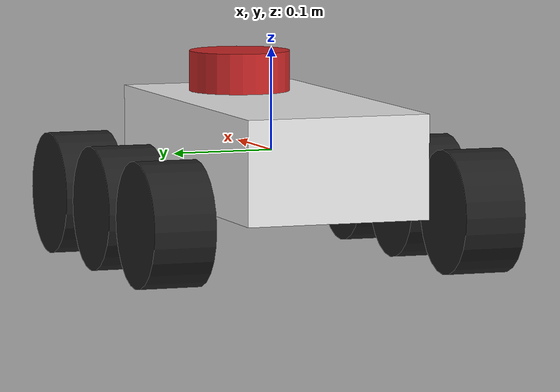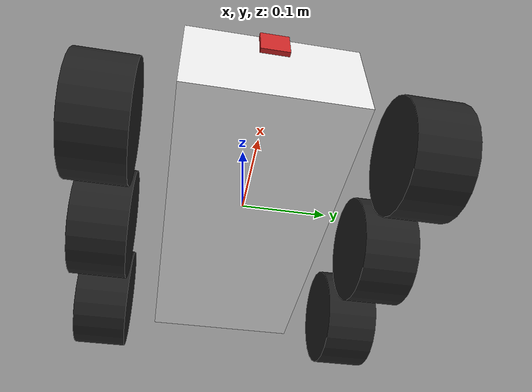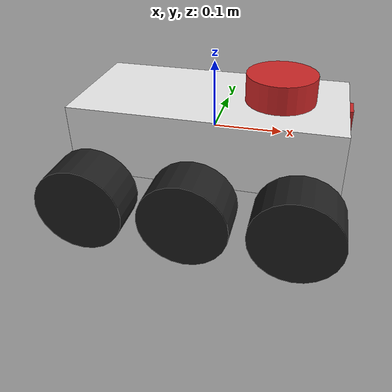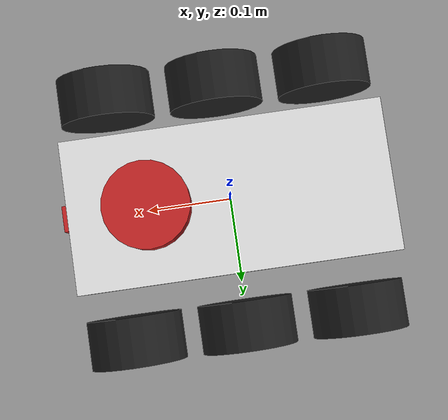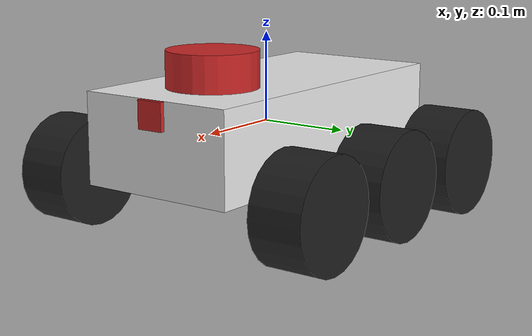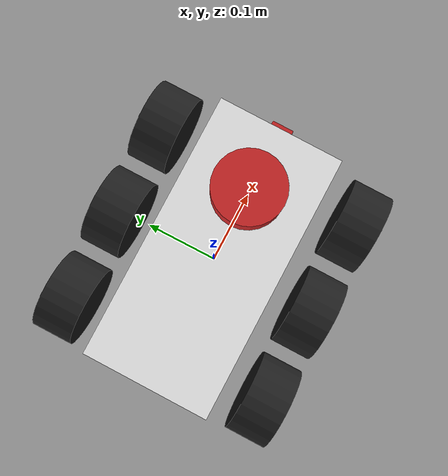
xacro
<?xml version="1.0"?>
<robot name="k3robot" xmlns:xacro="http://ros.org/wiki/xacro">

    <!-- Imports -->
    <xacro:include filename="colors.xacro"/>
    <xacro:include filename="robot_constants.xacro"/>
    <xacro:include filename="inertial_properties.xacro"/>
    <xacro:include filename="lidar.xacro"/>
    <xacro:include filename="gazebo_control.xacro"/>
    <xacro:include filename="camera.xacro"/>

    <!-- Robot Footprint -->
    <link name="base_footprint"/>

    <!-- Robot Base -->
    <link name="base_link">
        <visual>
            <geometry>
                <box size="${base_length} ${base_width} ${base_height}"/>
            </geometry>
            <material name="white"/>
        </visual>
        <collision>
            <geometry>
                <box size="${base_length} ${base_width} ${base_height}"/>
            </geometry>
        </collision>
        <xacro:box_inertia m="2.8" w="${base_width}" d="${base_length}" h="${base_height}"/>
    </link>

    <gazebo reference="base_link">
      <material>Gazebo/White</material>
    </gazebo>

    <joint name="base_joint" type="fixed">
        <parent link="base_link"/>
        <child link="base_footprint"/>
        <origin xyz="0.0 0.0 ${-(wheel_radius + wheel_zoff)}" rpy="0 0 0"/>
    </joint>

      <!-- Robot Wheels -->
  <xacro:macro name="wheel" params="prefix x_reflect y_reflect xoffset">
    <link name="${prefix}_link">
      <visual>
        <origin xyz="0 0 0" rpy="${pi/2} 0 0"/>
        <geometry>
            <cylinder radius="${wheel_radius}" length="${wheel_width}"/>
        </geometry>
        <material name="black"/>
      </visual>
      <collision>
        <origin xyz="0 0 0" rpy="${pi/2} 0 0"/>
            <geometry>
                <cylinder radius="${wheel_radius}" length="${wheel_width}"/>
            </geometry>
      </collision>

      <xacro:cylinder_inertia m="0.2" r="${wheel_radius}" h="${wheel_width}"/>

    </link>

    <gazebo reference="${prefix}_link">
      <material>Gazebo/Black</material>
    </gazebo>

    <joint name="${prefix}_joint" type="continuous">
      <parent link="base_link"/>
      <child link="${prefix}_link"/>
      <origin xyz="${x_reflect*wheel_xoff + xoffset} ${y_reflect*(base_width/2+wheel_ygap)} ${-wheel_zoff}" rpy="0 0 0"/>
      <axis xyz="0 1 0"/>
    </joint>
  </xacro:macro>

    <xacro:wheel prefix="drivewhl_lf" x_reflect="-1" y_reflect="1" xoffset="0.14"/>
    <xacro:wheel prefix="drivewhl_rf" x_reflect="-1" y_reflect="-1" xoffset="0.14"/>

    <xacro:wheel prefix="drivewhl_lm" x_reflect="-1" y_reflect="1" xoffset="0"/>
    <xacro:wheel prefix="drivewhl_rm" x_reflect="-1" y_reflect="-1" xoffset="0"/>

    <xacro:wheel prefix="drivewhl_lr" x_reflect="-1" y_reflect="1" xoffset="-0.14"/>
    <xacro:wheel prefix="drivewhl_rr" x_reflect="-1" y_reflect="-1" xoffset="-0.14"/>

</robot>

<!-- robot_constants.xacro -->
<robot xmlns:xacro="http://www.ros.org/wiki/xacro">

    <!-- Define Robot Contants -->
    <xacro:property name="base_width" value="0.18"/>
    <xacro:property name="base_length" value="0.38"/>
    <xacro:property name="base_height" value="0.10"/>

    <xacro:property name="wheel_radius" value="0.06"/>
    <xacro:property name="wheel_width" value="0.06"/>

    <xacro:property name="wheel_ygap" value="0.064"/>
    <xacro:property name="wheel_zoff" value="0.05"/>
    <xacro:property name="wheel_xoff" value="0.0"/>

</robot>

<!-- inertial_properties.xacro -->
<robot xmlns:xacro="http://www.ros.org/wiki/xacro">

<!-- Define intertial property macros  -->

    <!--Chassis Inertial Properties -->
  <xacro:macro name="box_inertia" params="m w h d">
    <inertial>
      <origin xyz="0 0 0" rpy="${pi/2} 0 ${pi/2}"/>
      <mass value="${m}"/>
      <inertia ixx="${(m/12) * (h*h + d*d)}" ixy="0.0" ixz="0.0" iyy="${(m/12) * (w*w + d*d)}" iyz="0.0" izz="${(m/12) * (w*w + h*h)}"/>
    </inertial>
  </xacro:macro>

    <!-- Wheel Intertial Properties -->
  <xacro:macro name="cylinder_inertia" params="m r h">
    <inertial>
      <origin xyz="0 0 0" rpy="${pi/2} 0 0" />
      <mass value="${m}"/>
      <inertia ixx="${(m/12) * (3*r*r + h*h)}" ixy = "0" ixz = "0" iyy="${(m/12) * (3*r*r + h*h)}" iyz = "0" izz="${(m/2) * (r*r)}"/>
    </inertial>
  </xacro:macro>

</robot>

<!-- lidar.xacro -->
<robot xmlns:xacro="http://www.ros.org/wiki/xacro">

    <joint name="laser_joint" type="fixed">
        <parent link="base_link"/>
        <child link="laser_frame"/>
        <origin xyz="0.095 0 0.07" rpy="0 0 0"/>
    </joint>

    <link name="laser_frame">
        <visual>
            <geometry>
                <cylinder radius="0.05" length="0.04"/>
            </geometry>
            <material name="red"/>
        </visual>
        <collision>
            <geometry>
                <cylinder radius="0.05" length="0.04"/>
            </geometry>
        </collision>
        <xacro:cylinder_inertia m="0.1" h="0.04" r="0.05"/>
    </link>

    <gazebo reference="laser_frame">
        <material>Gazebo/Red</material>
        <!-- Add scanning lidar -->
        <sensor name="laser" type="ray">
            <pose> 0 0 0 0 0 0 </pose>
            <visualize>false</visualize>
            <update_rate>10</update_rate>
            <ray>
                <scan>
                    <horizontal>
                        <samples>360</samples>
                        <min_angle>-3.14</min_angle>
                        <max_angle>3.14</max_angle>
                    </horizontal>
                </scan>
                <range>
                    <min>0.3</min>
                    <max>12</max>
                </range>
            </ray>
            <plugin name="laser_controller" filename="libgazebo_ros_ray_sensor.so">
                <ros>
                    <argument>~/out:=scan</argument>
                </ros>
                <output_type>sensor_msgs/LaserScan</output_type>
                <frame_name>laser_frame</frame_name>
            </plugin>
        </sensor>
    </gazebo>

</robot>

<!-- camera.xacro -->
<robot xmlns:xacro="http://www.ros.org/wiki/xacro">

    <joint name="camera_joint" type="fixed">
        <parent link="base_link"/>
        <child link="camera_link"/>
        <origin xyz="0.19 0 0.0345" rpy="0 0 0"/>
    </joint>

    <link name="camera_link">
        <visual>
            <geometry>
                <box size="0.010 0.03 0.03"/>
            </geometry>
            <material name="red"/>
        </visual>
    </link>

    <joint name="camera_optical_joint" type="fixed">
        <origin xyz="0 0 0" rpy="${-pi/2} 0 ${-pi/2}" />
        <parent link="camera_link" />
        <child link="camera_link_optical" />
    </joint>

    <link name="camera_link_optical"></link>

    <gazebo reference="camera_link">
        <material>Gazebo/Red</material>
        <!-- Add camera sensor -->
        <sensor name="camera" type="camera">
            <pose> 0 0 0 0 0 0 </pose>
            <visualize>true</visualize>
            <update_rate>10</update_rate>
            <camera>
                <horizontal_fov>1.089</horizontal_fov>
                <image>
                    <format>R8G8B8</format>
                    <width>640</width>
                    <height>480</height>
                </image>
                <clip>
                    <near>0.05</near>
                    <far>8.0</far>
                </clip>
            </camera>
            <plugin name="camera_controller" filename="libgazebo_ros_camera.so">
                <frame_name>camera_link_optical</frame_name>
            </plugin>
        </sensor>
    </gazebo>

</robot>
